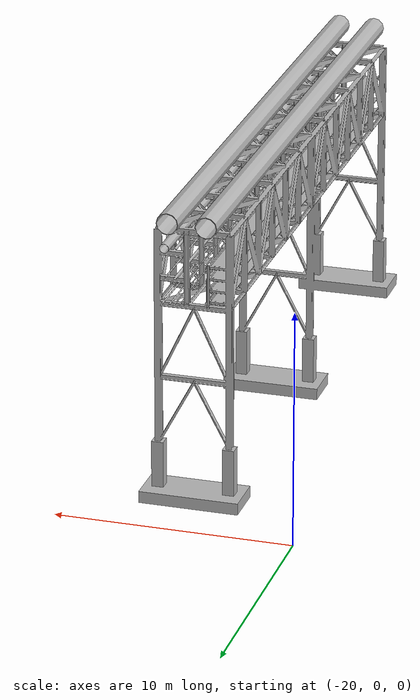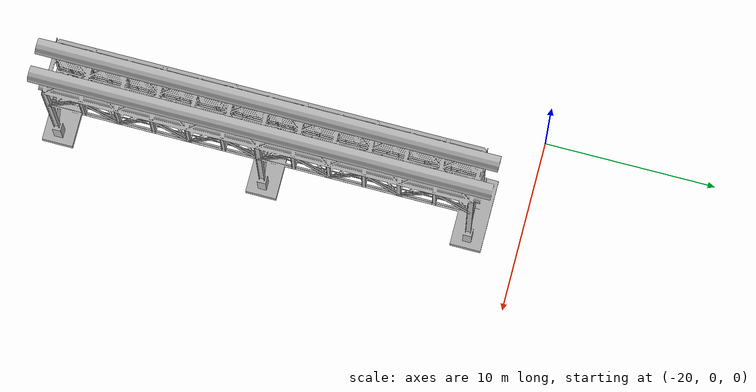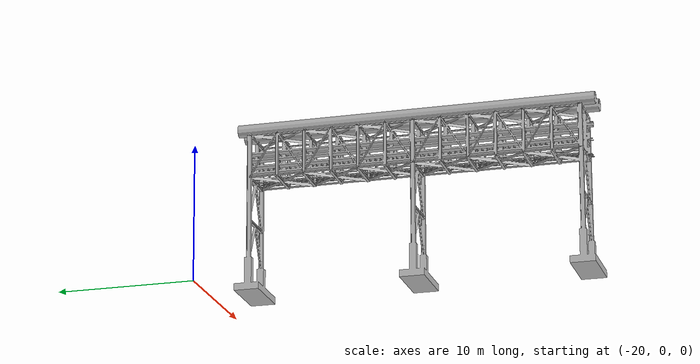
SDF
<?xml version="1.0" ?>
<sdf version='1.7'>
  <model name='Piperack-1'>
    <pose>-15 -15 0 0 0 0</pose>
    <link name='base_link'>
      <inertial>
        <pose>0.036692 6.65411 -0 0 -0 0</pose>
        <mass>111997</mass>
        <inertia>
          <ixx>2.26849e+06</ixx>
          <ixy>1.90125e-07</ixy>
          <ixz>8.75251e-06</ixz>
          <iyy>2.30542e+06</iyy>
          <iyz>4.15525e-05</iyz>
          <izz>87242.4</izz>
        </inertia>
      </inertial>
      <collision name='base_link_collision'>
        <pose>0 0 0 0 -0 0</pose>
        <geometry>
          <mesh>
            <scale>1 1 1</scale>
            <uri>model://Piperack-1/meshes/base_link.STL</uri>
          </mesh>
        </geometry>
      </collision>
      <visual name='base_link_visual'>
        <pose>0 0 0 0 -0 0</pose>
        <geometry>
          <mesh>
            <scale>1 1 1</scale>
            <uri>model://Piperack-1/meshes/base_link.STL</uri>
          </mesh>
        </geometry>
      </visual>
    </link>
  </model>
</sdf>
